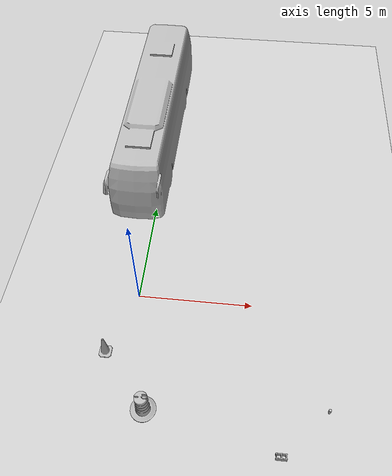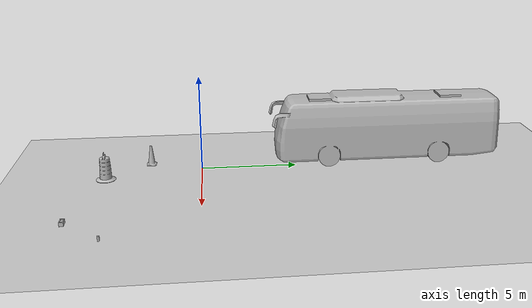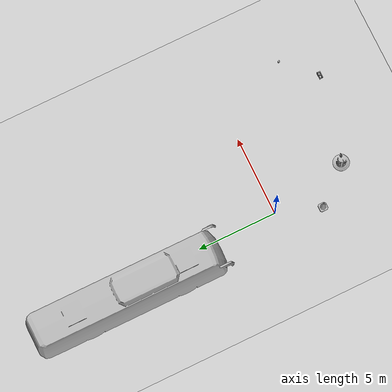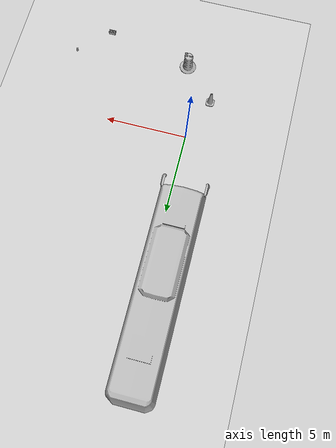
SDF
<sdf version="1.7">
 <world name="default">
  <light name="sun" type="directional">
   <pose>0 0 10 0 -0 0</pose>
   <diffuse>0.8 0.8 0.8 1</diffuse>
   <specular>0.2 0.2 0.2 1</specular>
   <attenuation>
    <range>1000</range>
    <constant>0.9</constant>
    <linear>0.01</linear>
    <quadratic>0.001</quadratic>
   </attenuation>
   <direction>-0.5 0.1 -0.9</direction>
   <spot><inner_angle>0</inner_angle><outer_angle>0</outer_angle><falloff>0</falloff></spot>
  </light>
  <model name="ground_plane">
   <static>1</static>
   <link name="link">
    <collision name="collision">
     <geometry><plane><normal>0 0 1</normal><size>100 100</size></plane></geometry>
     <surface>
      <contact><collide_bitmask>65535</collide_bitmask></contact>
      <friction><ode><mu>100</mu><mu2>50</mu2></ode></friction>
     </surface>
    </collision>
    <visual name="visual">
     <cast_shadows>0</cast_shadows>
     <geometry><plane><normal>0 0 1</normal><size>100 100</size></plane></geometry>
     <material>
      <script><uri>file://media/materials/scripts/gazebo.material</uri><name>Gazebo/Grey</name></script>
     </material>
    </visual>
   </link>
  </model>
  <gravity>0 0 -9.8</gravity>
  <magnetic_field>6e-06 2.3e-05 -4.2e-05</magnetic_field>
  <atmosphere type="adiabatic"/>
  <physics type="ode">
   <max_step_size>0.001</max_step_size>
   <real_time_factor>1</real_time_factor>
   <real_time_update_rate>1000</real_time_update_rate>
  </physics>
  <scene><ambient>0.4 0.4 0.4 1</ambient><background>0.7 0.7 0.7 1</background><shadows>1</shadows></scene>
  <audio><device>default</device></audio>
  <spherical_coordinates>
   <surface_model>EARTH_WGS84</surface_model>
   <latitude_deg>0</latitude_deg>
   <longitude_deg>0</longitude_deg>
   <elevation>0</elevation>
   <heading_deg>0</heading_deg>
  </spherical_coordinates>
  <model name="Construction Cone">
   <link name="link">
    <collision name="collision">
     <geometry>
      <mesh><scale>10 10 10</scale><uri>model://construction_cone/meshes/construction_cone.dae</uri></mesh>
     </geometry>
    </collision>
    <visual name="visual">
     <geometry>
      <mesh><scale>10 10 10</scale><uri>model://construction_cone/meshes/construction_cone.dae</uri></mesh>
     </geometry>
    </visual>
    <inertial>
     <inertia><ixx>1</ixx><ixy>0</ixy><ixz>0</ixz><iyy>1</iyy><iyz>0</iyz><izz>1</izz></inertia>
     <mass>1</mass>
    </inertial>
   </link>
   <pose>-0.917227 -2.72706 -0 0 -1e-06 0</pose>
  </model>
  <model name="Construction Barrel">
   <link name="link">
    <inertial>
     <pose>0 0 0.4 0 -0 0</pose>
     <mass>500</mass>
     <inertia><ixx>51.2096</ixx><iyy>51.2096</iyy><izz>25</izz><ixy>0</ixy><ixz>0</ixz><iyz>0</iyz></inertia>
    </inertial>
    <collision name="collision">
     <geometry><mesh><uri>model://construction_barrel/meshes/construction_barrel.dae</uri></mesh></geometry>
    </collision>
    <visual name="visual">
     <geometry><mesh><uri>model://construction_barrel/meshes/construction_barrel.dae</uri></mesh></geometry>
    </visual>
   </link>
   <pose>1.03116 -4.91311 -1e-06 3e-06 7e-06 -1.2e-05</pose>
  </model>
  <model name="bus">
   <static>1</static>
   <link name="link">
    <collision name="collision">
     <geometry><mesh><scale>0.01 0.01 0.01</scale><uri>model://bus/meshes/bus.obj</uri></mesh></geometry>
    </collision>
    <visual name="visual">
     <geometry><mesh><scale>0.01 0.01 0.01</scale><uri>model://bus/meshes/bus.obj</uri></mesh></geometry>
    </visual>
   </link>
   <pose>-0.790318 10.0167 0 0 -0 0</pose>
  </model>
  <model name="cinder_block">
   <link name="link">
    <inertial>
     <pose>0 0 0.1016 0 -0 0</pose>
     <mass>5</mass>
     <inertia>
      <ixx>0.028705</ixx>
      <ixy>0</ixy>
      <iyy>0.073708</iyy>
      <ixz>0</ixz>
      <iyz>0</iyz>
      <izz>0.06908</izz>
     </inertia>
    </inertial>
    <visual name="visual">
     <geometry><mesh><uri>model://cinder_block/meshes/cinder_block.dae</uri></mesh></geometry>
    </visual>
    <collision name="left">
     <pose>0 -0.08465 0.1016 0 -0 0</pose>
     <geometry><box><size>0.43495 0.0339 0.2032</size></box></geometry>
     <surface>
      <contact><ode><max_vel>0.1</max_vel><min_depth>0.001</min_depth></ode></contact>
      <friction><ode><mu>1</mu><mu2>1</mu2></ode></friction>
     </surface>
    </collision>
    <collision name="right">
     <pose>0 0.08465 0.1016 0 -0 0</pose>
     <geometry><box><size>0.43495 0.0339 0.2032</size></box></geometry>
     <surface>
      <contact><ode><max_vel>0.1</max_vel><min_depth>0.001</min_depth></ode></contact>
      <friction><ode><mu>1</mu><mu2>1</mu2></ode></friction>
     </surface>
    </collision>
    <collision name="front">
     <pose>0.18625 0 0.1016 0 -0 0</pose>
     <geometry><box><size>0.0339 0.1354 0.203</size></box></geometry>
     <surface>
      <contact><ode><max_vel>0.1</max_vel><min_depth>0.001</min_depth></ode></contact>
      <friction><ode><mu>1</mu><mu2>1</mu2></ode></friction>
     </surface>
    </collision>
    <collision name="middle">
     <pose>0 0 0.1016 0 -0 0</pose>
     <geometry><box><size>0.0339 0.1354 0.203</size></box></geometry>
     <surface>
      <contact><ode><max_vel>0.1</max_vel><min_depth>0.001</min_depth></ode></contact>
      <friction><ode><mu>1</mu><mu2>1</mu2></ode></friction>
     </surface>
    </collision>
    <collision name="back">
     <pose>-0.18625 0 0.1016 0 -0 0</pose>
     <geometry><box><size>0.0339 0.1354 0.203</size></box></geometry>
     <surface>
      <contact><ode><max_vel>0.1</max_vel><min_depth>0.001</min_depth></ode></contact>
      <friction><ode><mu>1</mu><mu2>1</mu2></ode></friction>
     </surface>
    </collision>
   </link>
   <pose>6.38262 -6.16708 -6e-06 0 2.8e-05 0</pose>
  </model>
  <model name="beer">
   <link name="link">
    <pose>0 0 0.115 0 -0 0</pose>
    <inertial>
     <mass>0.39</mass>
     <inertia><ixx>0.00058</ixx><ixy>0</ixy><ixz>0</ixz><iyy>0.00058</iyy><iyz>0</iyz><izz>0.00019</izz></inertia>
    </inertial>
    <collision name="collision">
     <geometry><cylinder><radius>0.055</radius><length>0.23</length></cylinder></geometry>
    </collision>
    <visual name="visual">
     <geometry><cylinder><radius>0.055</radius><length>0.23</length></cylinder></geometry>
     <material>
      <script>
       <uri>model://beer/materials/scripts</uri>
       <uri>model://beer/materials/textures</uri>
       <name>Beer/Diffuse</name>
      </script>
     </material>
    </visual>
   </link>
   <pose>8.21674 -4.32631 -2e-06 1e-06 -0 -3e-06</pose>
  </model>
 </world>
</sdf>
